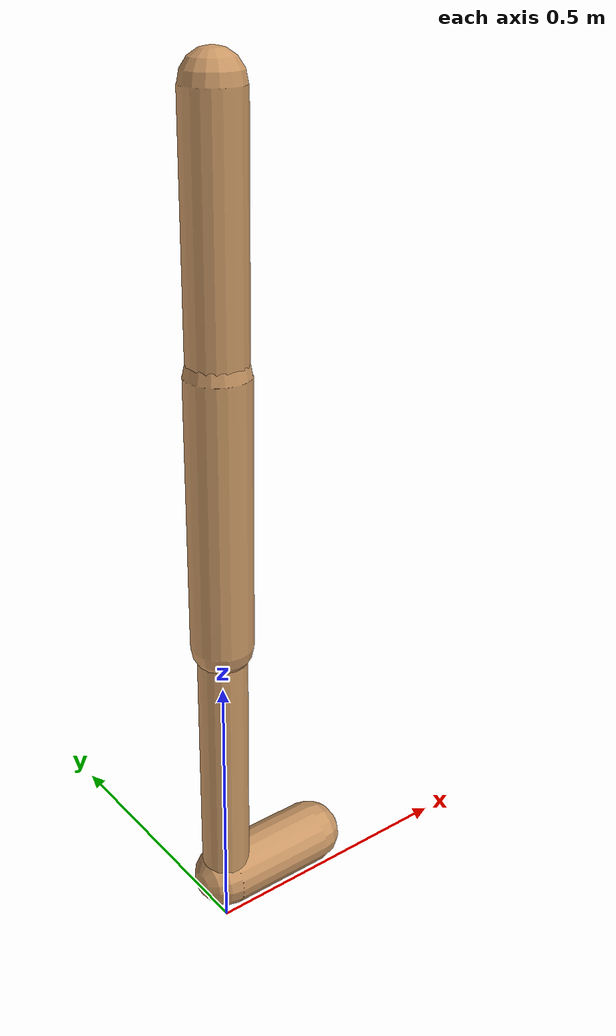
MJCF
<mujoco model="walker2d">
  <compiler angle="degree" coordinate="global" inertiafromgeom="true" />
  <default>
    <joint armature="0.01" damping=".1" limited="true" />
    <geom conaffinity="0" condim="3" contype="1" density="1000" friction="0.8 .1 .1" rgba="0.8 0.6 .4 1" />
  </default>
  <option integrator="RK4" timestep="0.002" />
  <worldbody>

    <body name="torso" pos="0 0 0.023016333109264056">
      <joint armature="0" axis="1 0 0" damping="0" limited="false" name="ignorex" pos="0 0 0" stiffness="0" type="slide" />
      <joint armature="0" axis="0 0 1" damping="0" limited="false" name="ignorez" pos="0 0 0" ref="1.25" stiffness="0" type="slide" />
      <joint armature="0" axis="0 1 0" damping="0" limited="false" name="ignorey" pos="0 0 0" stiffness="0" type="hinge" />
      <geom fromto="0 0 1.45 0 0 1.05" name="torso_geom" size="0.04806568775534818" type="capsule" />
      <body name="thigh">
        <joint axis="0 -1 0" name="thigh_joint" pos="0 0 1.05" range="-150 0" type="hinge" />
        <geom fromto="0.0 0.0 1.05 0.0 0.0 0.5890975264219275" name="thigh_geom" size="0.052241018744612594" type="capsule" />
        <body name="leg" pos="0.0 0.0 -0.010902473578072502">
          <joint axis="0 -1 0" name="leg_joint" pos="0 0 0.6" range="-150 0" type="hinge" />
          <geom fromto="0.0 0.0 0.6 0.0 0.0 0.0878861404688084" name="leg_geom" size="0.04179281499569007" type="capsule" />
          <body name="foot" pos="0.0 0.0 -0.01211385953119161">
            <joint axis="0 -1 0" name="foot_joint" pos="0 0 0.1" range="-45 45" type="hinge" />
            <geom fromto="0.0 0.0 0.1 0.1891068459655219 0.0 0.1" name="foot_geom" size="0.05679852215798685" type="capsule" />
          </body>
        </body>
      </body>

      <body name="thigh_left">
        <joint axis="0 -1 0" name="thigh_left_joint" pos="0 0 1.05" range="-150 0" type="hinge" />
        <geom fromto="0.0 0.0 1.05 0.0 0.0 0.5890975264219275" name="thigh_left_geom" rgba=".7 .3 .6 1" size="0.052241018744612594" type="capsule" />
        <body name="leg_left" pos="0.0 0.0 -0.010902473578072502">
          <joint axis="0 -1 0" name="leg_left_joint" pos="0 0 0.6" range="-150 0" type="hinge" />
          <geom fromto="0.0 0.0 0.6 0.0 0.0 0.0878861404688084" name="leg_left_geom" rgba=".7 .3 .6 1" size="0.04179281499569007" type="capsule" />
          <body name="foot_left" pos="0.0 0.0 -0.01211385953119161">
            <joint axis="0 -1 0" name="foot_left_joint" pos="0 0 0.1" range="-45 45" type="hinge" />
            <geom fromto="0.0 0.0 0.1 0.1891068459655219 0.0 0.1" name="foot_left_geom" rgba=".7 .3 .6 1" size="0.05679852215798685" type="capsule" />
          </body>
        </body>
      </body>
    </body>
  </worldbody>
  <actuator>

    <motor ctrllimited="true" ctrlrange="-1.0 1.0" gear="100" joint="thigh_joint" />
    <motor ctrllimited="true" ctrlrange="-1.0 1.0" gear="100" joint="leg_joint" />
    <motor ctrllimited="true" ctrlrange="-1.0 1.0" gear="100" joint="foot_joint" />
    <motor ctrllimited="true" ctrlrange="-1.0 1.0" gear="100" joint="thigh_left_joint" />
    <motor ctrllimited="true" ctrlrange="-1.0 1.0" gear="100" joint="leg_left_joint" />
    <motor ctrllimited="true" ctrlrange="-1.0 1.0" gear="100" joint="foot_left_joint" />

  </actuator>
</mujoco>
